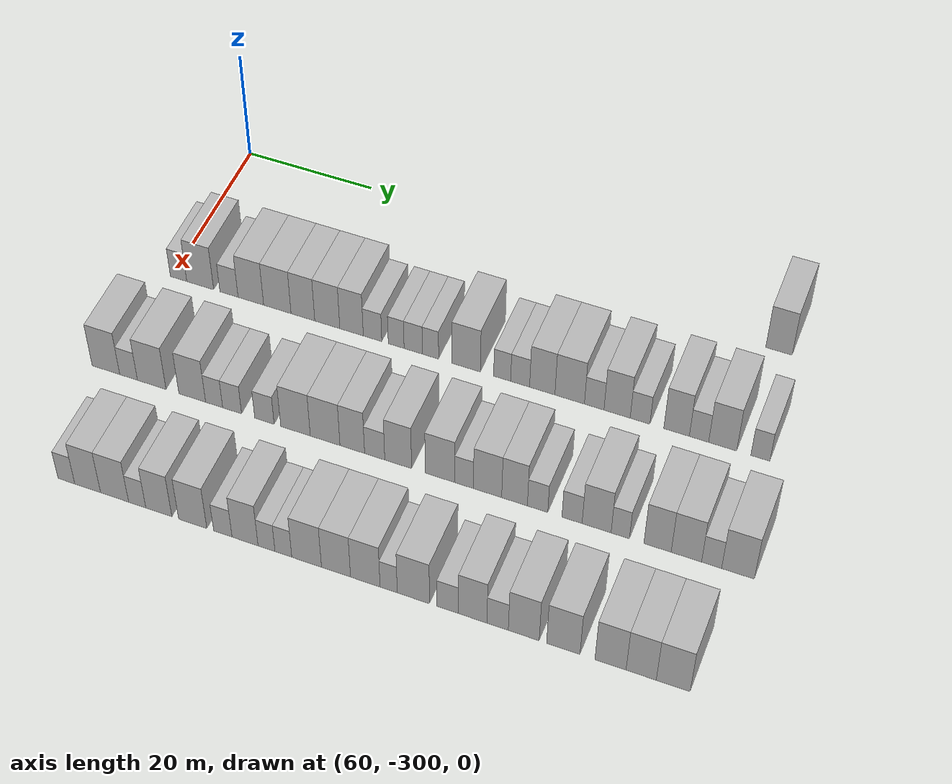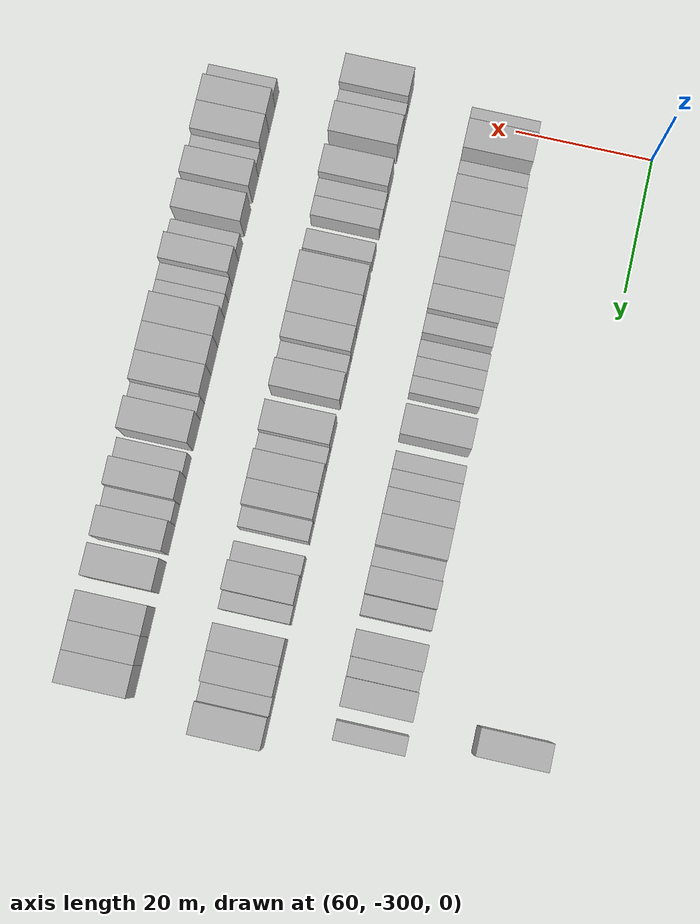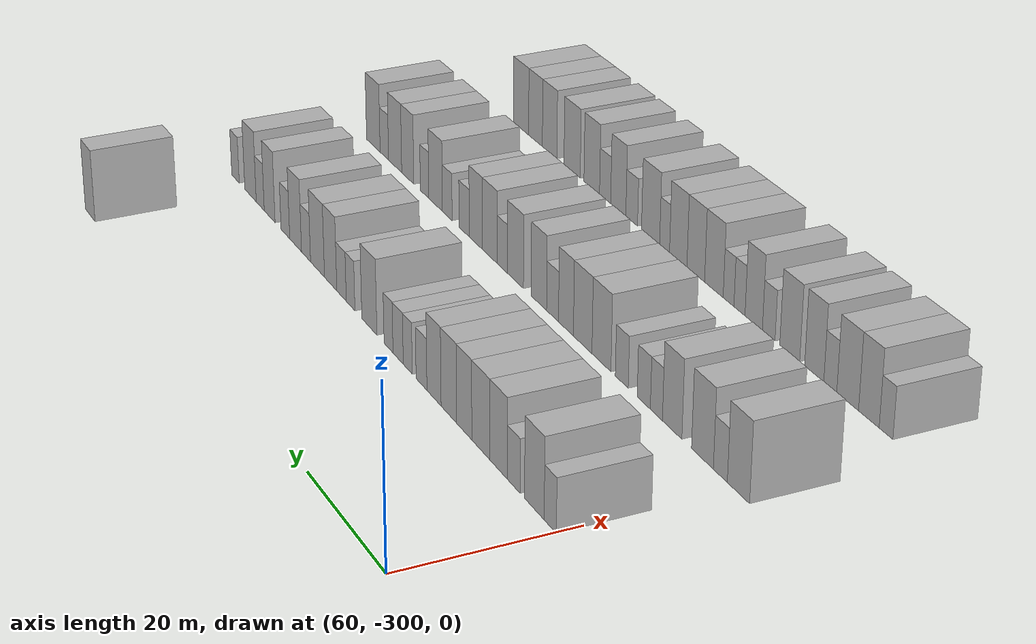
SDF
<sdf version="1.6">
 <world name="default">
  <model name="building_362">
   <static>1</static>
   <pose>63.0000 -213.9407 0 0.000000 0.000000 0.000000</pose>
   <link name="link">
    <pose>0 0 4.50 0 0 0</pose>
    <collision name="collision"><geometry><box><size>10.0000 3.8696 9.0000</size></box></geometry></collision>
    <visual name="visual">
     <cast_shadows>0</cast_shadows>
     <geometry><box><size>10.0000 3.8696 9.0000</size></box></geometry>
     <material>
      <script>
       <uri>model://HANNAS_wall/materials/scripts</uri>
       <uri>model://HANNAS_wall/materials/textures</uri>
       <name>vrc/HANNAS_wall</name>
      </script>
     </material>
    </visual>
   </link>
  </model>
  <model name="building_514">
   <static>1</static>
   <pose>82.0000 -298.9187 0 0.000000 0.000000 0.000000</pose>
   <link name="link">
    <pose>0 0 3.00 0 0 0</pose>
    <collision name="collision"><geometry><box><size>10.0000 2.6333 6.0000</size></box></geometry></collision>
    <visual name="visual">
     <cast_shadows>0</cast_shadows>
     <geometry><box><size>10.0000 2.6333 6.0000</size></box></geometry>
     <material>
      <script>
       <uri>model://HANNAS_wall/materials/scripts</uri>
       <uri>model://HANNAS_wall/materials/textures</uri>
       <name>vrc/HANNAS_wall</name>
      </script>
     </material>
    </visual>
   </link>
  </model>
  <model name="building_515">
   <static>1</static>
   <pose>82.0000 -295.4372 0 0.000000 0.000000 0.000000</pose>
   <link name="link">
    <pose>0 0 4.50 0 0 0</pose>
    <collision name="collision"><geometry><box><size>10.0000 4.3297 9.0000</size></box></geometry></collision>
    <visual name="visual">
     <cast_shadows>0</cast_shadows>
     <geometry><box><size>10.0000 4.3297 9.0000</size></box></geometry>
     <material>
      <script>
       <uri>model://HANNAS_wall/materials/scripts</uri>
       <uri>model://HANNAS_wall/materials/textures</uri>
       <name>vrc/HANNAS_wall</name>
      </script>
     </material>
    </visual>
   </link>
  </model>
  <model name="building_516">
   <static>1</static>
   <pose>82.0000 -290.8241 0 0.000000 0.000000 0.000000</pose>
   <link name="link">
    <pose>0 0 3.00 0 0 0</pose>
    <collision name="collision"><geometry><box><size>10.0000 2.8964 6.0000</size></box></geometry></collision>
    <visual name="visual">
     <cast_shadows>0</cast_shadows>
     <geometry><box><size>10.0000 2.8964 6.0000</size></box></geometry>
     <material>
      <script>
       <uri>model://HANNAS_wall/materials/scripts</uri>
       <uri>model://HANNAS_wall/materials/textures</uri>
       <name>vrc/HANNAS_wall</name>
      </script>
     </material>
    </visual>
   </link>
  </model>
  <model name="building_517">
   <static>1</static>
   <pose>82.0000 -287.3460 0 0.000000 0.000000 0.000000</pose>
   <link name="link">
    <pose>0 0 4.50 0 0 0</pose>
    <collision name="collision"><geometry><box><size>10.0000 4.0597 9.0000</size></box></geometry></collision>
    <visual name="visual">
     <cast_shadows>0</cast_shadows>
     <geometry><box><size>10.0000 4.0597 9.0000</size></box></geometry>
     <material>
      <script>
       <uri>model://HANNAS_wall/materials/scripts</uri>
       <uri>model://HANNAS_wall/materials/textures</uri>
       <name>vrc/HANNAS_wall</name>
      </script>
     </material>
    </visual>
   </link>
  </model>
  <model name="building_518">
   <static>1</static>
   <pose>82.0000 -283.1564 0 0.000000 0.000000 0.000000</pose>
   <link name="link">
    <pose>0 0 4.50 0 0 0</pose>
    <collision name="collision"><geometry><box><size>10.0000 4.3195 9.0000</size></box></geometry></collision>
    <visual name="visual">
     <cast_shadows>0</cast_shadows>
     <geometry><box><size>10.0000 4.3195 9.0000</size></box></geometry>
     <material>
      <script>
       <uri>model://HANNAS_wall/materials/scripts</uri>
       <uri>model://HANNAS_wall/materials/textures</uri>
       <name>vrc/HANNAS_wall</name>
      </script>
     </material>
    </visual>
   </link>
  </model>
  <model name="building_519">
   <static>1</static>
   <pose>82.0000 -279.1359 0 0.000000 0.000000 0.000000</pose>
   <link name="link">
    <pose>0 0 4.50 0 0 0</pose>
    <collision name="collision"><geometry><box><size>10.0000 3.7215 9.0000</size></box></geometry></collision>
    <visual name="visual">
     <cast_shadows>0</cast_shadows>
     <geometry><box><size>10.0000 3.7215 9.0000</size></box></geometry>
     <material>
      <script>
       <uri>model://HANNAS_wall/materials/scripts</uri>
       <uri>model://HANNAS_wall/materials/textures</uri>
       <name>vrc/HANNAS_wall</name>
      </script>
     </material>
    </visual>
   </link>
  </model>
  <model name="building_520">
   <static>1</static>
   <pose>82.0000 -275.3227 0 0.000000 0.000000 0.000000</pose>
   <link name="link">
    <pose>0 0 4.50 0 0 0</pose>
    <collision name="collision"><geometry><box><size>10.0000 3.9050 9.0000</size></box></geometry></collision>
    <visual name="visual">
     <cast_shadows>0</cast_shadows>
     <geometry><box><size>10.0000 3.9050 9.0000</size></box></geometry>
     <material>
      <script>
       <uri>model://HANNAS_wall/materials/scripts</uri>
       <uri>model://HANNAS_wall/materials/textures</uri>
       <name>vrc/HANNAS_wall</name>
      </script>
     </material>
    </visual>
   </link>
  </model>
  <model name="building_521">
   <static>1</static>
   <pose>82.0000 -271.5518 0 0.000000 0.000000 0.000000</pose>
   <link name="link">
    <pose>0 0 4.50 0 0 0</pose>
    <collision name="collision"><geometry><box><size>10.0000 3.6367 9.0000</size></box></geometry></collision>
    <visual name="visual">
     <cast_shadows>0</cast_shadows>
     <geometry><box><size>10.0000 3.6367 9.0000</size></box></geometry>
     <material>
      <script>
       <uri>model://HANNAS_wall/materials/scripts</uri>
       <uri>model://HANNAS_wall/materials/textures</uri>
       <name>vrc/HANNAS_wall</name>
      </script>
     </material>
    </visual>
   </link>
  </model>
  <model name="building_522">
   <static>1</static>
   <pose>82.0000 -268.3092 0 0.000000 0.000000 0.000000</pose>
   <link name="link">
    <pose>0 0 3.00 0 0 0</pose>
    <collision name="collision"><geometry><box><size>10.0000 2.8486 6.0000</size></box></geometry></collision>
    <visual name="visual">
     <cast_shadows>0</cast_shadows>
     <geometry><box><size>10.0000 2.8486 6.0000</size></box></geometry>
     <material>
      <script>
       <uri>model://HANNAS_wall/materials/scripts</uri>
       <uri>model://HANNAS_wall/materials/textures</uri>
       <name>vrc/HANNAS_wall</name>
      </script>
     </material>
    </visual>
   </link>
  </model>
  <model name="building_523">
   <static>1</static>
   <pose>82.0000 -264.6736 0 0.000000 0.000000 0.000000</pose>
   <link name="link">
    <pose>0 0 3.00 0 0 0</pose>
    <collision name="collision"><geometry><box><size>10.0000 2.4226 6.0000</size></box></geometry></collision>
    <visual name="visual">
     <cast_shadows>0</cast_shadows>
     <geometry><box><size>10.0000 2.4226 6.0000</size></box></geometry>
     <material>
      <script>
       <uri>model://HANNAS_wall/materials/scripts</uri>
       <uri>model://HANNAS_wall/materials/textures</uri>
       <name>vrc/HANNAS_wall</name>
      </script>
     </material>
    </visual>
   </link>
  </model>
  <model name="building_524">
   <static>1</static>
   <pose>82.0000 -262.0700 0 0.000000 0.000000 0.000000</pose>
   <link name="link">
    <pose>0 0 3.00 0 0 0</pose>
    <collision name="collision"><geometry><box><size>10.0000 2.7846 6.0000</size></box></geometry></collision>
    <visual name="visual">
     <cast_shadows>0</cast_shadows>
     <geometry><box><size>10.0000 2.7846 6.0000</size></box></geometry>
     <material>
      <script>
       <uri>model://HANNAS_wall/materials/scripts</uri>
       <uri>model://HANNAS_wall/materials/textures</uri>
       <name>vrc/HANNAS_wall</name>
      </script>
     </material>
    </visual>
   </link>
  </model>
  <model name="building_525">
   <static>1</static>
   <pose>82.0000 -259.4414 0 0.000000 0.000000 0.000000</pose>
   <link name="link">
    <pose>0 0 3.00 0 0 0</pose>
    <collision name="collision"><geometry><box><size>10.0000 2.4726 6.0000</size></box></geometry></collision>
    <visual name="visual">
     <cast_shadows>0</cast_shadows>
     <geometry><box><size>10.0000 2.4726 6.0000</size></box></geometry>
     <material>
      <script>
       <uri>model://HANNAS_wall/materials/scripts</uri>
       <uri>model://HANNAS_wall/materials/textures</uri>
       <name>vrc/HANNAS_wall</name>
      </script>
     </material>
    </visual>
   </link>
  </model>
  <model name="building_526">
   <static>1</static>
   <pose>82.0000 -254.0551 0 0.000000 0.000000 0.000000</pose>
   <link name="link">
    <pose>0 0 4.50 0 0 0</pose>
    <collision name="collision"><geometry><box><size>10.0000 4.3000 9.0000</size></box></geometry></collision>
    <visual name="visual">
     <cast_shadows>0</cast_shadows>
     <geometry><box><size>10.0000 4.3000 9.0000</size></box></geometry>
     <material>
      <script>
       <uri>model://HANNAS_wall/materials/scripts</uri>
       <uri>model://HANNAS_wall/materials/textures</uri>
       <name>vrc/HANNAS_wall</name>
      </script>
     </material>
    </visual>
   </link>
  </model>
  <model name="building_527">
   <static>1</static>
   <pose>82.0000 -248.6331 0 0.000000 0.000000 0.000000</pose>
   <link name="link">
    <pose>0 0 3.00 0 0 0</pose>
    <collision name="collision"><geometry><box><size>10.0000 2.5439 6.0000</size></box></geometry></collision>
    <visual name="visual">
     <cast_shadows>0</cast_shadows>
     <geometry><box><size>10.0000 2.5439 6.0000</size></box></geometry>
     <material>
      <script>
       <uri>model://HANNAS_wall/materials/scripts</uri>
       <uri>model://HANNAS_wall/materials/textures</uri>
       <name>vrc/HANNAS_wall</name>
      </script>
     </material>
    </visual>
   </link>
  </model>
  <model name="building_528">
   <static>1</static>
   <pose>82.0000 -245.9519 0 0.000000 0.000000 0.000000</pose>
   <link name="link">
    <pose>0 0 3.00 0 0 0</pose>
    <collision name="collision"><geometry><box><size>10.0000 2.8185 6.0000</size></box></geometry></collision>
    <visual name="visual">
     <cast_shadows>0</cast_shadows>
     <geometry><box><size>10.0000 2.8185 6.0000</size></box></geometry>
     <material>
      <script>
       <uri>model://HANNAS_wall/materials/scripts</uri>
       <uri>model://HANNAS_wall/materials/textures</uri>
       <name>vrc/HANNAS_wall</name>
      </script>
     </material>
    </visual>
   </link>
  </model>
  <model name="building_529">
   <static>1</static>
   <pose>82.0000 -242.6681 0 0.000000 0.000000 0.000000</pose>
   <link name="link">
    <pose>0 0 4.50 0 0 0</pose>
    <collision name="collision"><geometry><box><size>10.0000 3.7492 9.0000</size></box></geometry></collision>
    <visual name="visual">
     <cast_shadows>0</cast_shadows>
     <geometry><box><size>10.0000 3.7492 9.0000</size></box></geometry>
     <material>
      <script>
       <uri>model://HANNAS_wall/materials/scripts</uri>
       <uri>model://HANNAS_wall/materials/textures</uri>
       <name>vrc/HANNAS_wall</name>
      </script>
     </material>
    </visual>
   </link>
  </model>
  <model name="building_530">
   <static>1</static>
   <pose>82.0000 -238.6189 0 0.000000 0.000000 0.000000</pose>
   <link name="link">
    <pose>0 0 4.50 0 0 0</pose>
    <collision name="collision"><geometry><box><size>10.0000 4.3490 9.0000</size></box></geometry></collision>
    <visual name="visual">
     <cast_shadows>0</cast_shadows>
     <geometry><box><size>10.0000 4.3490 9.0000</size></box></geometry>
     <material>
      <script>
       <uri>model://HANNAS_wall/materials/scripts</uri>
       <uri>model://HANNAS_wall/materials/textures</uri>
       <name>vrc/HANNAS_wall</name>
      </script>
     </material>
    </visual>
   </link>
  </model>
  <model name="building_531">
   <static>1</static>
   <pose>82.0000 -235.0141 0 0.000000 0.000000 0.000000</pose>
   <link name="link">
    <pose>0 0 3.00 0 0 0</pose>
    <collision name="collision"><geometry><box><size>10.0000 2.8607 6.0000</size></box></geometry></collision>
    <visual name="visual">
     <cast_shadows>0</cast_shadows>
     <geometry><box><size>10.0000 2.8607 6.0000</size></box></geometry>
     <material>
      <script>
       <uri>model://HANNAS_wall/materials/scripts</uri>
       <uri>model://HANNAS_wall/materials/textures</uri>
       <name>vrc/HANNAS_wall</name>
      </script>
     </material>
    </visual>
   </link>
  </model>
  <model name="building_532">
   <static>1</static>
   <pose>82.0000 -231.6749 0 0.000000 0.000000 0.000000</pose>
   <link name="link">
    <pose>0 0 4.50 0 0 0</pose>
    <collision name="collision"><geometry><box><size>10.0000 3.8177 9.0000</size></box></geometry></collision>
    <visual name="visual">
     <cast_shadows>0</cast_shadows>
     <geometry><box><size>10.0000 3.8177 9.0000</size></box></geometry>
     <material>
      <script>
       <uri>model://HANNAS_wall/materials/scripts</uri>
       <uri>model://HANNAS_wall/materials/textures</uri>
       <name>vrc/HANNAS_wall</name>
      </script>
     </material>
    </visual>
   </link>
  </model>
  <model name="building_533">
   <static>1</static>
   <pose>82.0000 -228.3413 0 0.000000 0.000000 0.000000</pose>
   <link name="link">
    <pose>0 0 3.00 0 0 0</pose>
    <collision name="collision"><geometry><box><size>10.0000 2.8495 6.0000</size></box></geometry></collision>
    <visual name="visual">
     <cast_shadows>0</cast_shadows>
     <geometry><box><size>10.0000 2.8495 6.0000</size></box></geometry>
     <material>
      <script>
       <uri>model://HANNAS_wall/materials/scripts</uri>
       <uri>model://HANNAS_wall/materials/textures</uri>
       <name>vrc/HANNAS_wall</name>
      </script>
     </material>
    </visual>
   </link>
  </model>
  <model name="building_534">
   <static>1</static>
   <pose>82.0000 -223.0826 0 0.000000 0.000000 0.000000</pose>
   <link name="link">
    <pose>0 0 4.50 0 0 0</pose>
    <collision name="collision"><geometry><box><size>10.0000 3.6679 9.0000</size></box></geometry></collision>
    <visual name="visual">
     <cast_shadows>0</cast_shadows>
     <geometry><box><size>10.0000 3.6679 9.0000</size></box></geometry>
     <material>
      <script>
       <uri>model://HANNAS_wall/materials/scripts</uri>
       <uri>model://HANNAS_wall/materials/textures</uri>
       <name>vrc/HANNAS_wall</name>
      </script>
     </material>
    </visual>
   </link>
  </model>
  <model name="building_535">
   <static>1</static>
   <pose>82.0000 -219.8720 0 0.000000 0.000000 0.000000</pose>
   <link name="link">
    <pose>0 0 3.00 0 0 0</pose>
    <collision name="collision"><geometry><box><size>10.0000 2.7532 6.0000</size></box></geometry></collision>
    <visual name="visual">
     <cast_shadows>0</cast_shadows>
     <geometry><box><size>10.0000 2.7532 6.0000</size></box></geometry>
     <material>
      <script>
       <uri>model://HANNAS_wall/materials/scripts</uri>
       <uri>model://HANNAS_wall/materials/textures</uri>
       <name>vrc/HANNAS_wall</name>
      </script>
     </material>
    </visual>
   </link>
  </model>
  <model name="building_536">
   <static>1</static>
   <pose>82.0000 -216.4992 0 0.000000 0.000000 0.000000</pose>
   <link name="link">
    <pose>0 0 4.50 0 0 0</pose>
    <collision name="collision"><geometry><box><size>10.0000 3.9925 9.0000</size></box></geometry></collision>
    <visual name="visual">
     <cast_shadows>0</cast_shadows>
     <geometry><box><size>10.0000 3.9925 9.0000</size></box></geometry>
     <material>
      <script>
       <uri>model://HANNAS_wall/materials/scripts</uri>
       <uri>model://HANNAS_wall/materials/textures</uri>
       <name>vrc/HANNAS_wall</name>
      </script>
     </material>
    </visual>
   </link>
  </model>
  <model name="building_537">
   <static>1</static>
   <pose>82.0000 -211.1629 0 0.000000 0.000000 0.000000</pose>
   <link name="link">
    <pose>0 0 3.00 0 0 0</pose>
    <collision name="collision"><geometry><box><size>10.0000 2.6801 6.0000</size></box></geometry></collision>
    <visual name="visual">
     <cast_shadows>0</cast_shadows>
     <geometry><box><size>10.0000 2.6801 6.0000</size></box></geometry>
     <material>
      <script>
       <uri>model://HANNAS_wall/materials/scripts</uri>
       <uri>model://HANNAS_wall/materials/textures</uri>
       <name>vrc/HANNAS_wall</name>
      </script>
     </material>
    </visual>
   </link>
  </model>
  <model name="building_678">
   <static>1</static>
   <pose>101.0000 -300.9205 0 0.000000 0.000000 0.000000</pose>
   <link name="link">
    <pose>0 0 4.50 0 0 0</pose>
    <collision name="collision"><geometry><box><size>10.0000 4.3296 9.0000</size></box></geometry></collision>
    <visual name="visual">
     <cast_shadows>0</cast_shadows>
     <geometry><box><size>10.0000 4.3296 9.0000</size></box></geometry>
     <material>
      <script>
       <uri>model://HANNAS_wall/materials/scripts</uri>
       <uri>model://HANNAS_wall/materials/textures</uri>
       <name>vrc/HANNAS_wall</name>
      </script>
     </material>
    </visual>
   </link>
  </model>
  <model name="building_679">
   <static>1</static>
   <pose>101.0000 -297.3671 0 0.000000 0.000000 0.000000</pose>
   <link name="link">
    <pose>0 0 3.00 0 0 0</pose>
    <collision name="collision"><geometry><box><size>10.0000 2.7772 6.0000</size></box></geometry></collision>
    <visual name="visual">
     <cast_shadows>0</cast_shadows>
     <geometry><box><size>10.0000 2.7772 6.0000</size></box></geometry>
     <material>
      <script>
       <uri>model://HANNAS_wall/materials/scripts</uri>
       <uri>model://HANNAS_wall/materials/textures</uri>
       <name>vrc/HANNAS_wall</name>
      </script>
     </material>
    </visual>
   </link>
  </model>
  <model name="building_680">
   <static>1</static>
   <pose>101.0000 -293.7575 0 0.000000 0.000000 0.000000</pose>
   <link name="link">
    <pose>0 0 4.50 0 0 0</pose>
    <collision name="collision"><geometry><box><size>10.0000 4.4420 9.0000</size></box></geometry></collision>
    <visual name="visual">
     <cast_shadows>0</cast_shadows>
     <geometry><box><size>10.0000 4.4420 9.0000</size></box></geometry>
     <material>
      <script>
       <uri>model://HANNAS_wall/materials/scripts</uri>
       <uri>model://HANNAS_wall/materials/textures</uri>
       <name>vrc/HANNAS_wall</name>
      </script>
     </material>
    </visual>
   </link>
  </model>
  <model name="building_681">
   <static>1</static>
   <pose>101.0000 -287.4779 0 0.000000 0.000000 0.000000</pose>
   <link name="link">
    <pose>0 0 4.50 0 0 0</pose>
    <collision name="collision"><geometry><box><size>10.0000 4.1171 9.0000</size></box></geometry></collision>
    <visual name="visual">
     <cast_shadows>0</cast_shadows>
     <geometry><box><size>10.0000 4.1171 9.0000</size></box></geometry>
     <material>
      <script>
       <uri>model://HANNAS_wall/materials/scripts</uri>
       <uri>model://HANNAS_wall/materials/textures</uri>
       <name>vrc/HANNAS_wall</name>
      </script>
     </material>
    </visual>
   </link>
  </model>
  <model name="building_682">
   <static>1</static>
   <pose>101.0000 -284.1133 0 0.000000 0.000000 0.000000</pose>
   <link name="link">
    <pose>0 0 3.00 0 0 0</pose>
    <collision name="collision"><geometry><box><size>10.0000 2.6121 6.0000</size></box></geometry></collision>
    <visual name="visual">
     <cast_shadows>0</cast_shadows>
     <geometry><box><size>10.0000 2.6121 6.0000</size></box></geometry>
     <material>
      <script>
       <uri>model://HANNAS_wall/materials/scripts</uri>
       <uri>model://HANNAS_wall/materials/textures</uri>
       <name>vrc/HANNAS_wall</name>
      </script>
     </material>
    </visual>
   </link>
  </model>
  <model name="building_683">
   <static>1</static>
   <pose>101.0000 -281.3638 0 0.000000 0.000000 0.000000</pose>
   <link name="link">
    <pose>0 0 3.00 0 0 0</pose>
    <collision name="collision"><geometry><box><size>10.0000 2.8870 6.0000</size></box></geometry></collision>
    <visual name="visual">
     <cast_shadows>0</cast_shadows>
     <geometry><box><size>10.0000 2.8870 6.0000</size></box></geometry>
     <material>
      <script>
       <uri>model://HANNAS_wall/materials/scripts</uri>
       <uri>model://HANNAS_wall/materials/textures</uri>
       <name>vrc/HANNAS_wall</name>
      </script>
     </material>
    </visual>
   </link>
  </model>
  <model name="building_684">
   <static>1</static>
   <pose>101.0000 -276.4549 0 0.000000 0.000000 0.000000</pose>
   <link name="link">
    <pose>0 0 3.00 0 0 0</pose>
    <collision name="collision"><geometry><box><size>10.0000 2.9308 6.0000</size></box></geometry></collision>
    <visual name="visual">
     <cast_shadows>0</cast_shadows>
     <geometry><box><size>10.0000 2.9308 6.0000</size></box></geometry>
     <material>
      <script>
       <uri>model://HANNAS_wall/materials/scripts</uri>
       <uri>model://HANNAS_wall/materials/textures</uri>
       <name>vrc/HANNAS_wall</name>
      </script>
     </material>
    </visual>
   </link>
  </model>
  <model name="building_685">
   <static>1</static>
   <pose>101.0000 -271.7755 0 0.000000 0.000000 0.000000</pose>
   <link name="link">
    <pose>0 0 4.50 0 0 0</pose>
    <collision name="collision"><geometry><box><size>10.0000 4.4278 9.0000</size></box></geometry></collision>
    <visual name="visual">
     <cast_shadows>0</cast_shadows>
     <geometry><box><size>10.0000 4.4278 9.0000</size></box></geometry>
     <material>
      <script>
       <uri>model://HANNAS_wall/materials/scripts</uri>
       <uri>model://HANNAS_wall/materials/textures</uri>
       <name>vrc/HANNAS_wall</name>
      </script>
     </material>
    </visual>
   </link>
  </model>
  <model name="building_686">
   <static>1</static>
   <pose>101.0000 -267.3468 0 0.000000 0.000000 0.000000</pose>
   <link name="link">
    <pose>0 0 4.50 0 0 0</pose>
    <collision name="collision"><geometry><box><size>10.0000 4.4296 9.0000</size></box></geometry></collision>
    <visual name="visual">
     <cast_shadows>0</cast_shadows>
     <geometry><box><size>10.0000 4.4296 9.0000</size></box></geometry>
     <material>
      <script>
       <uri>model://HANNAS_wall/materials/scripts</uri>
       <uri>model://HANNAS_wall/materials/textures</uri>
       <name>vrc/HANNAS_wall</name>
      </script>
     </material>
    </visual>
   </link>
  </model>
  <model name="building_687">
   <static>1</static>
   <pose>101.0000 -263.3062 0 0.000000 0.000000 0.000000</pose>
   <link name="link">
    <pose>0 0 4.50 0 0 0</pose>
    <collision name="collision"><geometry><box><size>10.0000 3.6515 9.0000</size></box></geometry></collision>
    <visual name="visual">
     <cast_shadows>0</cast_shadows>
     <geometry><box><size>10.0000 3.6515 9.0000</size></box></geometry>
     <material>
      <script>
       <uri>model://HANNAS_wall/materials/scripts</uri>
       <uri>model://HANNAS_wall/materials/textures</uri>
       <name>vrc/HANNAS_wall</name>
      </script>
     </material>
    </visual>
   </link>
  </model>
  <model name="building_688">
   <static>1</static>
   <pose>101.0000 -259.9948 0 0.000000 0.000000 0.000000</pose>
   <link name="link">
    <pose>0 0 3.00 0 0 0</pose>
    <collision name="collision"><geometry><box><size>10.0000 2.9714 6.0000</size></box></geometry></collision>
    <visual name="visual">
     <cast_shadows>0</cast_shadows>
     <geometry><box><size>10.0000 2.9714 6.0000</size></box></geometry>
     <material>
      <script>
       <uri>model://HANNAS_wall/materials/scripts</uri>
       <uri>model://HANNAS_wall/materials/textures</uri>
       <name>vrc/HANNAS_wall</name>
      </script>
     </material>
    </visual>
   </link>
  </model>
  <model name="building_689">
   <static>1</static>
   <pose>101.0000 -256.5446 0 0.000000 0.000000 0.000000</pose>
   <link name="link">
    <pose>0 0 4.50 0 0 0</pose>
    <collision name="collision"><geometry><box><size>10.0000 3.9289 9.0000</size></box></geometry></collision>
    <visual name="visual">
     <cast_shadows>0</cast_shadows>
     <geometry><box><size>10.0000 3.9289 9.0000</size></box></geometry>
     <material>
      <script>
       <uri>model://HANNAS_wall/materials/scripts</uri>
       <uri>model://HANNAS_wall/materials/textures</uri>
       <name>vrc/HANNAS_wall</name>
      </script>
     </material>
    </visual>
   </link>
  </model>
  <model name="building_690">
   <static>1</static>
   <pose>101.0000 -250.4395 0 0.000000 0.000000 0.000000</pose>
   <link name="link">
    <pose>0 0 4.50 0 0 0</pose>
    <collision name="collision"><geometry><box><size>10.0000 4.2814 9.0000</size></box></geometry></collision>
    <visual name="visual">
     <cast_shadows>0</cast_shadows>
     <geometry><box><size>10.0000 4.2814 9.0000</size></box></geometry>
     <material>
      <script>
       <uri>model://HANNAS_wall/materials/scripts</uri>
       <uri>model://HANNAS_wall/materials/textures</uri>
       <name>vrc/HANNAS_wall</name>
      </script>
     </material>
    </visual>
   </link>
  </model>
  <model name="building_691">
   <static>1</static>
   <pose>101.0000 -246.9630 0 0.000000 0.000000 0.000000</pose>
   <link name="link">
    <pose>0 0 3.00 0 0 0</pose>
    <collision name="collision"><geometry><box><size>10.0000 2.6716 6.0000</size></box></geometry></collision>
    <visual name="visual">
     <cast_shadows>0</cast_shadows>
     <geometry><box><size>10.0000 2.6716 6.0000</size></box></geometry>
     <material>
      <script>
       <uri>model://HANNAS_wall/materials/scripts</uri>
       <uri>model://HANNAS_wall/materials/textures</uri>
       <name>vrc/HANNAS_wall</name>
      </script>
     </material>
    </visual>
   </link>
  </model>
  <model name="building_692">
   <static>1</static>
   <pose>101.0000 -243.5932 0 0.000000 0.000000 0.000000</pose>
   <link name="link">
    <pose>0 0 4.50 0 0 0</pose>
    <collision name="collision"><geometry><box><size>10.0000 4.0679 9.0000</size></box></geometry></collision>
    <visual name="visual">
     <cast_shadows>0</cast_shadows>
     <geometry><box><size>10.0000 4.0679 9.0000</size></box></geometry>
     <material>
      <script>
       <uri>model://HANNAS_wall/materials/scripts</uri>
       <uri>model://HANNAS_wall/materials/textures</uri>
       <name>vrc/HANNAS_wall</name>
      </script>
     </material>
    </visual>
   </link>
  </model>
  <model name="building_693">
   <static>1</static>
   <pose>101.0000 -239.7275 0 0.000000 0.000000 0.000000</pose>
   <link name="link">
    <pose>0 0 4.50 0 0 0</pose>
    <collision name="collision"><geometry><box><size>10.0000 3.6636 9.0000</size></box></geometry></collision>
    <visual name="visual">
     <cast_shadows>0</cast_shadows>
     <geometry><box><size>10.0000 3.6636 9.0000</size></box></geometry>
     <material>
      <script>
       <uri>model://HANNAS_wall/materials/scripts</uri>
       <uri>model://HANNAS_wall/materials/textures</uri>
       <name>vrc/HANNAS_wall</name>
      </script>
     </material>
    </visual>
   </link>
  </model>
  <model name="building_694">
   <static>1</static>
   <pose>101.0000 -236.4478 0 0.000000 0.000000 0.000000</pose>
   <link name="link">
    <pose>0 0 3.00 0 0 0</pose>
    <collision name="collision"><geometry><box><size>10.0000 2.8958 6.0000</size></box></geometry></collision>
    <visual name="visual">
     <cast_shadows>0</cast_shadows>
     <geometry><box><size>10.0000 2.8958 6.0000</size></box></geometry>
     <material>
      <script>
       <uri>model://HANNAS_wall/materials/scripts</uri>
       <uri>model://HANNAS_wall/materials/textures</uri>
       <name>vrc/HANNAS_wall</name>
      </script>
     </material>
    </visual>
   </link>
  </model>
  <model name="building_695">
   <static>1</static>
   <pose>101.0000 -231.5821 0 0.000000 0.000000 0.000000</pose>
   <link name="link">
    <pose>0 0 3.00 0 0 0</pose>
    <collision name="collision"><geometry><box><size>10.0000 2.8356 6.0000</size></box></geometry></collision>
    <visual name="visual">
     <cast_shadows>0</cast_shadows>
     <geometry><box><size>10.0000 2.8356 6.0000</size></box></geometry>
     <material>
      <script>
       <uri>model://HANNAS_wall/materials/scripts</uri>
       <uri>model://HANNAS_wall/materials/textures</uri>
       <name>vrc/HANNAS_wall</name>
      </script>
     </material>
    </visual>
   </link>
  </model>
  <model name="building_696">
   <static>1</static>
   <pose>101.0000 -228.1379 0 0.000000 0.000000 0.000000</pose>
   <link name="link">
    <pose>0 0 4.50 0 0 0</pose>
    <collision name="collision"><geometry><box><size>10.0000 4.0528 9.0000</size></box></geometry></collision>
    <visual name="visual">
     <cast_shadows>0</cast_shadows>
     <geometry><box><size>10.0000 4.0528 9.0000</size></box></geometry>
     <material>
      <script>
       <uri>model://HANNAS_wall/materials/scripts</uri>
       <uri>model://HANNAS_wall/materials/textures</uri>
       <name>vrc/HANNAS_wall</name>
      </script>
     </material>
    </visual>
   </link>
  </model>
  <model name="building_697">
   <static>1</static>
   <pose>101.0000 -224.8349 0 0.000000 0.000000 0.000000</pose>
   <link name="link">
    <pose>0 0 3.00 0 0 0</pose>
    <collision name="collision"><geometry><box><size>10.0000 2.5533 6.0000</size></box></geometry></collision>
    <visual name="visual">
     <cast_shadows>0</cast_shadows>
     <geometry><box><size>10.0000 2.5533 6.0000</size></box></geometry>
     <material>
      <script>
       <uri>model://HANNAS_wall/materials/scripts</uri>
       <uri>model://HANNAS_wall/materials/textures</uri>
       <name>vrc/HANNAS_wall</name>
      </script>
     </material>
    </visual>
   </link>
  </model>
  <model name="building_698">
   <static>1</static>
   <pose>101.0000 -219.6778 0 0.000000 0.000000 0.000000</pose>
   <link name="link">
    <pose>0 0 4.50 0 0 0</pose>
    <collision name="collision"><geometry><box><size>10.0000 3.7609 9.0000</size></box></geometry></collision>
    <visual name="visual">
     <cast_shadows>0</cast_shadows>
     <geometry><box><size>10.0000 3.7609 9.0000</size></box></geometry>
     <material>
      <script>
       <uri>model://HANNAS_wall/materials/scripts</uri>
       <uri>model://HANNAS_wall/materials/textures</uri>
       <name>vrc/HANNAS_wall</name>
      </script>
     </material>
    </visual>
   </link>
  </model>
  <model name="building_699">
   <static>1</static>
   <pose>101.0000 -215.7131 0 0.000000 0.000000 0.000000</pose>
   <link name="link">
    <pose>0 0 4.50 0 0 0</pose>
    <collision name="collision"><geometry><box><size>10.0000 4.1684 9.0000</size></box></geometry></collision>
    <visual name="visual">
     <cast_shadows>0</cast_shadows>
     <geometry><box><size>10.0000 4.1684 9.0000</size></box></geometry>
     <material>
      <script>
       <uri>model://HANNAS_wall/materials/scripts</uri>
       <uri>model://HANNAS_wall/materials/textures</uri>
       <name>vrc/HANNAS_wall</name>
      </script>
     </material>
    </visual>
   </link>
  </model>
  <model name="building_700">
   <static>1</static>
   <pose>101.0000 -212.2627 0 0.000000 0.000000 0.000000</pose>
   <link name="link">
    <pose>0 0 3.00 0 0 0</pose>
    <collision name="collision"><geometry><box><size>10.0000 2.7324 6.0000</size></box></geometry></collision>
    <visual name="visual">
     <cast_shadows>0</cast_shadows>
     <geometry><box><size>10.0000 2.7324 6.0000</size></box></geometry>
     <material>
      <script>
       <uri>model://HANNAS_wall/materials/scripts</uri>
       <uri>model://HANNAS_wall/materials/textures</uri>
       <name>vrc/HANNAS_wall</name>
      </script>
     </material>
    </visual>
   </link>
  </model>
  <model name="building_701">
   <static>1</static>
   <pose>101.0000 -208.6822 0 0.000000 0.000000 0.000000</pose>
   <link name="link">
    <pose>0 0 4.50 0 0 0</pose>
    <collision name="collision"><geometry><box><size>10.0000 4.4287 9.0000</size></box></geometry></collision>
    <visual name="visual">
     <cast_shadows>0</cast_shadows>
     <geometry><box><size>10.0000 4.4287 9.0000</size></box></geometry>
     <material>
      <script>
       <uri>model://HANNAS_wall/materials/scripts</uri>
       <uri>model://HANNAS_wall/materials/textures</uri>
       <name>vrc/HANNAS_wall</name>
      </script>
     </material>
    </visual>
   </link>
  </model>
  <model name="building_858">
   <static>1</static>
   <pose>120.0000 -297.0385 0 0.000000 0.000000 0.000000</pose>
   <link name="link">
    <pose>0 0 3.00 0 0 0</pose>
    <collision name="collision"><geometry><box><size>10.0000 2.5474 6.0000</size></box></geometry></collision>
    <visual name="visual">
     <cast_shadows>0</cast_shadows>
     <geometry><box><size>10.0000 2.5474 6.0000</size></box></geometry>
     <material>
      <script>
       <uri>model://HANNAS_wall/materials/scripts</uri>
       <uri>model://HANNAS_wall/materials/textures</uri>
       <name>vrc/HANNAS_wall</name>
      </script>
     </material>
    </visual>
   </link>
  </model>
  <model name="building_859">
   <static>1</static>
   <pose>120.0000 -293.8200 0 0.000000 0.000000 0.000000</pose>
   <link name="link">
    <pose>0 0 4.50 0 0 0</pose>
    <collision name="collision"><geometry><box><size>10.0000 3.8896 9.0000</size></box></geometry></collision>
    <visual name="visual">
     <cast_shadows>0</cast_shadows>
     <geometry><box><size>10.0000 3.8896 9.0000</size></box></geometry>
     <material>
      <script>
       <uri>model://HANNAS_wall/materials/scripts</uri>
       <uri>model://HANNAS_wall/materials/textures</uri>
       <name>vrc/HANNAS_wall</name>
      </script>
     </material>
    </visual>
   </link>
  </model>
  <model name="building_860">
   <static>1</static>
   <pose>120.0000 -289.7706 0 0.000000 0.000000 0.000000</pose>
   <link name="link">
    <pose>0 0 4.50 0 0 0</pose>
    <collision name="collision"><geometry><box><size>10.0000 4.2090 9.0000</size></box></geometry></collision>
    <visual name="visual">
     <cast_shadows>0</cast_shadows>
     <geometry><box><size>10.0000 4.2090 9.0000</size></box></geometry>
     <material>
      <script>
       <uri>model://HANNAS_wall/materials/scripts</uri>
       <uri>model://HANNAS_wall/materials/textures</uri>
       <name>vrc/HANNAS_wall</name>
      </script>
     </material>
    </visual>
   </link>
  </model>
  <model name="building_861">
   <static>1</static>
   <pose>120.0000 -286.3870 0 0.000000 0.000000 0.000000</pose>
   <link name="link">
    <pose>0 0 3.00 0 0 0</pose>
    <collision name="collision"><geometry><box><size>10.0000 2.5582 6.0000</size></box></geometry></collision>
    <visual name="visual">
     <cast_shadows>0</cast_shadows>
     <geometry><box><size>10.0000 2.5582 6.0000</size></box></geometry>
     <material>
      <script>
       <uri>model://HANNAS_wall/materials/scripts</uri>
       <uri>model://HANNAS_wall/materials/textures</uri>
       <name>vrc/HANNAS_wall</name>
      </script>
     </material>
    </visual>
   </link>
  </model>
  <model name="building_862">
   <static>1</static>
   <pose>120.0000 -283.1757 0 0.000000 0.000000 0.000000</pose>
   <link name="link">
    <pose>0 0 4.50 0 0 0</pose>
    <collision name="collision"><geometry><box><size>10.0000 3.8643 9.0000</size></box></geometry></collision>
    <visual name="visual">
     <cast_shadows>0</cast_shadows>
     <geometry><box><size>10.0000 3.8643 9.0000</size></box></geometry>
     <material>
      <script>
       <uri>model://HANNAS_wall/materials/scripts</uri>
       <uri>model://HANNAS_wall/materials/textures</uri>
       <name>vrc/HANNAS_wall</name>
      </script>
     </material>
    </visual>
   </link>
  </model>
  <model name="building_863">
   <static>1</static>
   <pose>120.0000 -278.1719 0 0.000000 0.000000 0.000000</pose>
   <link name="link">
    <pose>0 0 4.50 0 0 0</pose>
    <collision name="collision"><geometry><box><size>10.0000 4.1434 9.0000</size></box></geometry></collision>
    <visual name="visual">
     <cast_shadows>0</cast_shadows>
     <geometry><box><size>10.0000 4.1434 9.0000</size></box></geometry>
     <material>
      <script>
       <uri>model://HANNAS_wall/materials/scripts</uri>
       <uri>model://HANNAS_wall/materials/textures</uri>
       <name>vrc/HANNAS_wall</name>
      </script>
     </material>
    </visual>
   </link>
  </model>
  <model name="building_864">
   <static>1</static>
   <pose>120.0000 -273.7564 0 0.000000 0.000000 0.000000</pose>
   <link name="link">
    <pose>0 0 3.00 0 0 0</pose>
    <collision name="collision"><geometry><box><size>10.0000 2.6876 6.0000</size></box></geometry></collision>
    <visual name="visual">
     <cast_shadows>0</cast_shadows>
     <geometry><box><size>10.0000 2.6876 6.0000</size></box></geometry>
     <material>
      <script>
       <uri>model://HANNAS_wall/materials/scripts</uri>
       <uri>model://HANNAS_wall/materials/textures</uri>
       <name>vrc/HANNAS_wall</name>
      </script>
     </material>
    </visual>
   </link>
  </model>
  <model name="building_865">
   <static>1</static>
   <pose>120.0000 -270.5254 0 0.000000 0.000000 0.000000</pose>
   <link name="link">
    <pose>0 0 4.50 0 0 0</pose>
    <collision name="collision"><geometry><box><size>10.0000 3.7744 9.0000</size></box></geometry></collision>
    <visual name="visual">
     <cast_shadows>0</cast_shadows>
     <geometry><box><size>10.0000 3.7744 9.0000</size></box></geometry>
     <material>
      <script>
       <uri>model://HANNAS_wall/materials/scripts</uri>
       <uri>model://HANNAS_wall/materials/textures</uri>
       <name>vrc/HANNAS_wall</name>
      </script>
     </material>
    </visual>
   </link>
  </model>
  <model name="building_866">
   <static>1</static>
   <pose>120.0000 -267.4171 0 0.000000 0.000000 0.000000</pose>
   <link name="link">
    <pose>0 0 3.00 0 0 0</pose>
    <collision name="collision"><geometry><box><size>10.0000 2.4424 6.0000</size></box></geometry></collision>
    <visual name="visual">
     <cast_shadows>0</cast_shadows>
     <geometry><box><size>10.0000 2.4424 6.0000</size></box></geometry>
     <material>
      <script>
       <uri>model://HANNAS_wall/materials/scripts</uri>
       <uri>model://HANNAS_wall/materials/textures</uri>
       <name>vrc/HANNAS_wall</name>
      </script>
     </material>
    </visual>
   </link>
  </model>
  <model name="building_867">
   <static>1</static>
   <pose>120.0000 -264.9892 0 0.000000 0.000000 0.000000</pose>
   <link name="link">
    <pose>0 0 3.00 0 0 0</pose>
    <collision name="collision"><geometry><box><size>10.0000 2.4133 6.0000</size></box></geometry></collision>
    <visual name="visual">
     <cast_shadows>0</cast_shadows>
     <geometry><box><size>10.0000 2.4133 6.0000</size></box></geometry>
     <material>
      <script>
       <uri>model://HANNAS_wall/materials/scripts</uri>
       <uri>model://HANNAS_wall/materials/textures</uri>
       <name>vrc/HANNAS_wall</name>
      </script>
     </material>
    </visual>
   </link>
  </model>
  <model name="building_868">
   <static>1</static>
   <pose>120.0000 -261.6616 0 0.000000 0.000000 0.000000</pose>
   <link name="link">
    <pose>0 0 4.50 0 0 0</pose>
    <collision name="collision"><geometry><box><size>10.0000 4.2419 9.0000</size></box></geometry></collision>
    <visual name="visual">
     <cast_shadows>0</cast_shadows>
     <geometry><box><size>10.0000 4.2419 9.0000</size></box></geometry>
     <material>
      <script>
       <uri>model://HANNAS_wall/materials/scripts</uri>
       <uri>model://HANNAS_wall/materials/textures</uri>
       <name>vrc/HANNAS_wall</name>
      </script>
     </material>
    </visual>
   </link>
  </model>
  <model name="building_869">
   <static>1</static>
   <pose>120.0000 -257.4768 0 0.000000 0.000000 0.000000</pose>
   <link name="link">
    <pose>0 0 4.50 0 0 0</pose>
    <collision name="collision"><geometry><box><size>10.0000 4.1277 9.0000</size></box></geometry></collision>
    <visual name="visual">
     <cast_shadows>0</cast_shadows>
     <geometry><box><size>10.0000 4.1277 9.0000</size></box></geometry>
     <material>
      <script>
       <uri>model://HANNAS_wall/materials/scripts</uri>
       <uri>model://HANNAS_wall/materials/textures</uri>
       <name>vrc/HANNAS_wall</name>
      </script>
     </material>
    </visual>
   </link>
  </model>
  <model name="building_870">
   <static>1</static>
   <pose>120.0000 -253.3345 0 0.000000 0.000000 0.000000</pose>
   <link name="link">
    <pose>0 0 4.50 0 0 0</pose>
    <collision name="collision"><geometry><box><size>10.0000 4.1569 9.0000</size></box></geometry></collision>
    <visual name="visual">
     <cast_shadows>0</cast_shadows>
     <geometry><box><size>10.0000 4.1569 9.0000</size></box></geometry>
     <material>
      <script>
       <uri>model://HANNAS_wall/materials/scripts</uri>
       <uri>model://HANNAS_wall/materials/textures</uri>
       <name>vrc/HANNAS_wall</name>
      </script>
     </material>
    </visual>
   </link>
  </model>
  <model name="building_871">
   <static>1</static>
   <pose>120.0000 -250.0501 0 0.000000 0.000000 0.000000</pose>
   <link name="link">
    <pose>0 0 3.00 0 0 0</pose>
    <collision name="collision"><geometry><box><size>10.0000 2.4120 6.0000</size></box></geometry></collision>
    <visual name="visual">
     <cast_shadows>0</cast_shadows>
     <geometry><box><size>10.0000 2.4120 6.0000</size></box></geometry>
     <material>
      <script>
       <uri>model://HANNAS_wall/materials/scripts</uri>
       <uri>model://HANNAS_wall/materials/textures</uri>
       <name>vrc/HANNAS_wall</name>
      </script>
     </material>
    </visual>
   </link>
  </model>
  <model name="building_872">
   <static>1</static>
   <pose>120.0000 -246.5983 0 0.000000 0.000000 0.000000</pose>
   <link name="link">
    <pose>0 0 4.50 0 0 0</pose>
    <collision name="collision"><geometry><box><size>10.0000 4.4914 9.0000</size></box></geometry></collision>
    <visual name="visual">
     <cast_shadows>0</cast_shadows>
     <geometry><box><size>10.0000 4.4914 9.0000</size></box></geometry>
     <material>
      <script>
       <uri>model://HANNAS_wall/materials/scripts</uri>
       <uri>model://HANNAS_wall/materials/textures</uri>
       <name>vrc/HANNAS_wall</name>
      </script>
     </material>
    </visual>
   </link>
  </model>
  <model name="building_873">
   <static>1</static>
   <pose>120.0000 -241.8633 0 0.000000 0.000000 0.000000</pose>
   <link name="link">
    <pose>0 0 3.00 0 0 0</pose>
    <collision name="collision"><geometry><box><size>10.0000 2.9786 6.0000</size></box></geometry></collision>
    <visual name="visual">
     <cast_shadows>0</cast_shadows>
     <geometry><box><size>10.0000 2.9786 6.0000</size></box></geometry>
     <material>
      <script>
       <uri>model://HANNAS_wall/materials/scripts</uri>
       <uri>model://HANNAS_wall/materials/textures</uri>
       <name>vrc/HANNAS_wall</name>
      </script>
     </material>
    </visual>
   </link>
  </model>
  <model name="building_874">
   <static>1</static>
   <pose>120.0000 -238.4075 0 0.000000 0.000000 0.000000</pose>
   <link name="link">
    <pose>0 0 4.50 0 0 0</pose>
    <collision name="collision"><geometry><box><size>10.0000 3.9331 9.0000</size></box></geometry></collision>
    <visual name="visual">
     <cast_shadows>0</cast_shadows>
     <geometry><box><size>10.0000 3.9331 9.0000</size></box></geometry>
     <material>
      <script>
       <uri>model://HANNAS_wall/materials/scripts</uri>
       <uri>model://HANNAS_wall/materials/textures</uri>
       <name>vrc/HANNAS_wall</name>
      </script>
     </material>
    </visual>
   </link>
  </model>
  <model name="building_875">
   <static>1</static>
   <pose>120.0000 -234.9774 0 0.000000 0.000000 0.000000</pose>
   <link name="link">
    <pose>0 0 3.00 0 0 0</pose>
    <collision name="collision"><geometry><box><size>10.0000 2.9270 6.0000</size></box></geometry></collision>
    <visual name="visual">
     <cast_shadows>0</cast_shadows>
     <geometry><box><size>10.0000 2.9270 6.0000</size></box></geometry>
     <material>
      <script>
       <uri>model://HANNAS_wall/materials/scripts</uri>
       <uri>model://HANNAS_wall/materials/textures</uri>
       <name>vrc/HANNAS_wall</name>
      </script>
     </material>
    </visual>
   </link>
  </model>
  <model name="building_876">
   <static>1</static>
   <pose>120.0000 -231.4168 0 0.000000 0.000000 0.000000</pose>
   <link name="link">
    <pose>0 0 4.50 0 0 0</pose>
    <collision name="collision"><geometry><box><size>10.0000 4.1943 9.0000</size></box></geometry></collision>
    <visual name="visual">
     <cast_shadows>0</cast_shadows>
     <geometry><box><size>10.0000 4.1943 9.0000</size></box></geometry>
     <material>
      <script>
       <uri>model://HANNAS_wall/materials/scripts</uri>
       <uri>model://HANNAS_wall/materials/textures</uri>
       <name>vrc/HANNAS_wall</name>
      </script>
     </material>
    </visual>
   </link>
  </model>
  <model name="building_877">
   <static>1</static>
   <pose>120.0000 -226.0717 0 0.000000 0.000000 0.000000</pose>
   <link name="link">
    <pose>0 0 4.50 0 0 0</pose>
    <collision name="collision"><geometry><box><size>10.0000 4.4958 9.0000</size></box></geometry></collision>
    <visual name="visual">
     <cast_shadows>0</cast_shadows>
     <geometry><box><size>10.0000 4.4958 9.0000</size></box></geometry>
     <material>
      <script>
       <uri>model://HANNAS_wall/materials/scripts</uri>
       <uri>model://HANNAS_wall/materials/textures</uri>
       <name>vrc/HANNAS_wall</name>
      </script>
     </material>
    </visual>
   </link>
  </model>
  <model name="building_878">
   <static>1</static>
   <pose>120.0000 -219.7524 0 0.000000 0.000000 0.000000</pose>
   <link name="link">
    <pose>0 0 4.50 0 0 0</pose>
    <collision name="collision"><geometry><box><size>10.0000 4.1429 9.0000</size></box></geometry></collision>
    <visual name="visual">
     <cast_shadows>0</cast_shadows>
     <geometry><box><size>10.0000 4.1429 9.0000</size></box></geometry>
     <material>
      <script>
       <uri>model://HANNAS_wall/materials/scripts</uri>
       <uri>model://HANNAS_wall/materials/textures</uri>
       <name>vrc/HANNAS_wall</name>
      </script>
     </material>
    </visual>
   </link>
  </model>
  <model name="building_879">
   <static>1</static>
   <pose>120.0000 -215.6850 0 0.000000 0.000000 0.000000</pose>
   <link name="link">
    <pose>0 0 4.50 0 0 0</pose>
    <collision name="collision"><geometry><box><size>10.0000 3.9918 9.0000</size></box></geometry></collision>
    <visual name="visual">
     <cast_shadows>0</cast_shadows>
     <geometry><box><size>10.0000 3.9918 9.0000</size></box></geometry>
     <material>
      <script>
       <uri>model://HANNAS_wall/materials/scripts</uri>
       <uri>model://HANNAS_wall/materials/textures</uri>
       <name>vrc/HANNAS_wall</name>
      </script>
     </material>
    </visual>
   </link>
  </model>
  <model name="building_880">
   <static>1</static>
   <pose>120.0000 -211.4649 0 0.000000 0.000000 0.000000</pose>
   <link name="link">
    <pose>0 0 4.50 0 0 0</pose>
    <collision name="collision"><geometry><box><size>10.0000 4.4484 9.0000</size></box></geometry></collision>
    <visual name="visual">
     <cast_shadows>0</cast_shadows>
     <geometry><box><size>10.0000 4.4484 9.0000</size></box></geometry>
     <material>
      <script>
       <uri>model://HANNAS_wall/materials/scripts</uri>
       <uri>model://HANNAS_wall/materials/textures</uri>
       <name>vrc/HANNAS_wall</name>
      </script>
     </material>
    </visual>
   </link>
  </model>
 </world>
</sdf>
